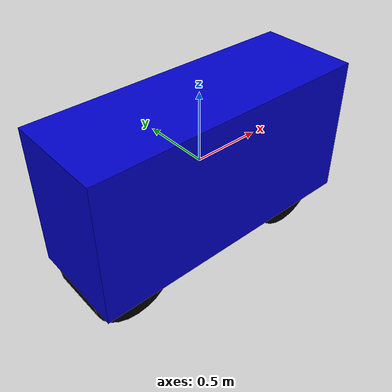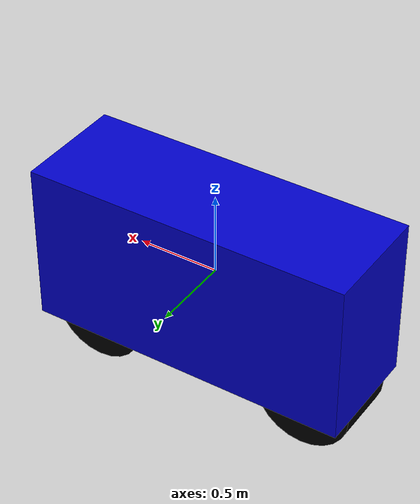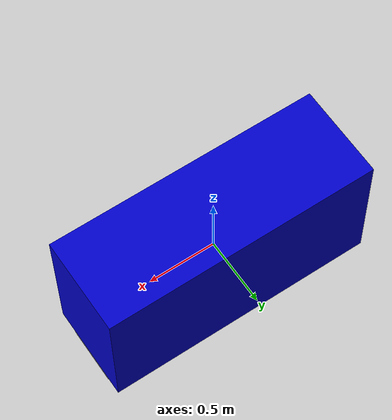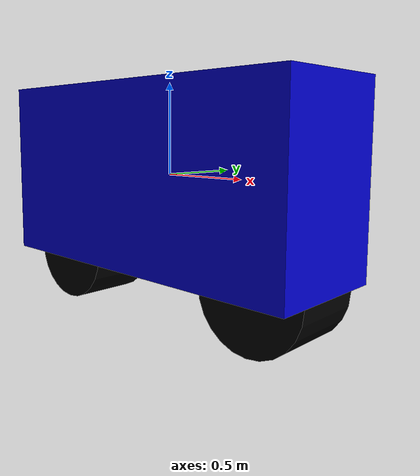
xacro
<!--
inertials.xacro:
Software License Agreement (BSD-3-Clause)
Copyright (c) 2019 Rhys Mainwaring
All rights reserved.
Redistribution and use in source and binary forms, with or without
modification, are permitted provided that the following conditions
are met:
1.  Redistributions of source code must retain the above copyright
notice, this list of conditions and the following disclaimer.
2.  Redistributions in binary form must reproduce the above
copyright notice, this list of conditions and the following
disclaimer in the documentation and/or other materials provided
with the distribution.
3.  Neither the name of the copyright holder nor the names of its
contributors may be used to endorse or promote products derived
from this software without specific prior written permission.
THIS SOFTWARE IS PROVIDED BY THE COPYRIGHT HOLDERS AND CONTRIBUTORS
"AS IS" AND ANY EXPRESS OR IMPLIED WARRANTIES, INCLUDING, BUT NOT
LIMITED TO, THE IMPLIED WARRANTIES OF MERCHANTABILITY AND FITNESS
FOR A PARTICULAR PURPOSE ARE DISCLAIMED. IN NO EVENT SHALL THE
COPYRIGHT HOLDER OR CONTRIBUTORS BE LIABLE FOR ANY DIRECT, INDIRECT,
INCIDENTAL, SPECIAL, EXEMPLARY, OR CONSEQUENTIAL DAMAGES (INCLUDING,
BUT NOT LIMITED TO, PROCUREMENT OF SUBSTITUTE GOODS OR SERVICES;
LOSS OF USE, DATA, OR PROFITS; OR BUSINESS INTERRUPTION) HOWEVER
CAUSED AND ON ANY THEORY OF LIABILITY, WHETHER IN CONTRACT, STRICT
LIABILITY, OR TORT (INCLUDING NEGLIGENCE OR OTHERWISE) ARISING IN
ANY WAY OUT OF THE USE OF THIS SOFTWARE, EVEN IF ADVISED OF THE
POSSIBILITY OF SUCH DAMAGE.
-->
<?xml version="1.0"?>
<robot  name="bicycle_bot" xmlns:xacro="http://wiki.ros.org/xacro">
    <!-- xacro includes -->
    <xacro:include filename="$(find acky_bot_description)/urdf/common/materials.xacro"/>
    <xacro:include filename="$(find acky_bot_description)/urdf/common/inertials.xacro"/>

    <xacro:property name="robot_namespace" value="/acky_bot"/>

    <!-- Gazebo plugins -->
    <gazebo>
        <!-- Load ros_control plugin -->
        <plugin name="gazebo_ros_control" filename="libgazebo_ros_control.so">
            <robotNamespace>${robot_namespace}</robotNamespace>
            <robotSimType>gazebo_ros_control/DefaultRobotHWSim</robotSimType>
            <legacyModeNS>false</legacyModeNS>
        </plugin>

        <!-- Load gazebo_ros plugin. Publish passive (non-actuated) joints from Gazebo -->
        <plugin name="gazebo_ros_joint_state_publisher" filename="libgazebo_ros_joint_state_publisher.so">
            <robotNamespace>${robot_namespace}</robotNamespace>
            <jointName>
                front_wheel_joint
            </jointName>
            <updateRate>50</updateRate>
            <alwaysOn>true</alwaysOn>
        </plugin>

    </gazebo>

    <!-- Degree-to-radian conversions -->
    <xacro:property name="degrees_45" value="0.785398163"/>
    <xacro:property name="degrees_90" value="1.57079633"/>
    <xacro:property name="degrees_180" value="3.14159265"/>

    <!-- Basic Geometry of Body -->
    <xacro:property name="body_length" value="2.0" />
    <xacro:property name="body_width" value="0.7" />
    <xacro:property name="body_height" value="1.0" />
    <xacro:property name="body_mass" value="10"/>

    <!-- Front Steer (Motor) Properties -->
    <xacro:property name="front_steer_width" value="0.4" />
    <xacro:property name="front_steer_diameter" value="0.3" />
    <xacro:property name="front_steer_mass" value="2"/>

    <!-- Front Wheel Properties -->
    <xacro:property name="front_wheel_width" value="0.4" />
    <xacro:property name="front_wheel_diameter" value="0.6" />
    <xacro:property name="front_wheel_mass" value="5"/>

    <!-- Rear Wheel Properties -->
    <xacro:property name="rear_wheel_width" value="0.4" />
    <xacro:property name="rear_wheel_diameter" value="0.6" />
    <xacro:property name="rear_wheel_mass" value="5"/>

    <!-- Base Link -->
    <link name="base_link">
        <visual>
            <geometry>
                <box size="${body_length} ${body_width} ${body_height}"/>
            </geometry>
            <material name="blue" />
        </visual>
        <collision>
            <geometry>
                <box size="${body_length} ${body_width} ${body_height}"/>
            </geometry>
        </collision>
        <xacro:solid_cuboid_inertial
            rpy="0 0 0" xyz="0 0 0"
            mass="${body_mass}"
            x="${body_length}" y="${body_width}" z="${body_height}" />
    </link>

    <gazebo reference="base_link">
        <material>Gazebo/Blue</material>
    </gazebo>

    <link name="front_steer">
        <visual>
            <origin xyz="0 0 0" rpy="0 0 0"/>
            <geometry>
                <cylinder radius="${front_steer_diameter/2}" length="${front_steer_width}"/>
            </geometry>
            <material name="green" />
        </visual>
        <collision>
            <origin xyz="0 0 0" rpy="0 0 0"/>
            <geometry>
                <cylinder radius="${front_steer_diameter/2}" length="${front_steer_width}"/>
            </geometry>
        </collision>
        <xacro:solid_cylinder_inertial
            rpy="${degrees_90} 0 0" xyz="0 0 0"
            mass="${front_steer_mass}"
            radius="${front_steer_diameter/2}" length="${front_steer_width}" />
    </link>

    <gazebo reference="front_steer">
        <material>Gazebo/Green</material>
    </gazebo>

    <joint name="front_steer_joint" type="revolute">
        <parent link="base_link"/>
        <child link="front_steer"/>
        <axis xyz="0 0 1"/>
        <origin xyz="0.7 0 0" rpy="0 0 0"/>
        <limit lower="-0.50" upper="0.50" effort="1000" velocity="3" />
    </joint>

    <transmission name="front_steer_joint_trans">
        <type>transmission_interface/SimpleTransmission</type>
        <joint name="front_steer_joint">
            <hardwareInterface>hardware_interface/PositionJointInterface</hardwareInterface>
        </joint>
        <actuator name="front_steer_joint_motor">
            <hardwareInterface>hardware_interface/PositionJointInterface</hardwareInterface>
            <mechanicalReduction>1</mechanicalReduction>
        </actuator>
    </transmission>

    <link name="front_wheel">
        <visual>
            <origin xyz="0 0 0" rpy="${degrees_90} 0 0"/>
            <geometry>
                <cylinder radius="${front_wheel_diameter/2}" length="${front_wheel_width}"/>
            </geometry>
            <material name="black" />
        </visual>
        <collision>
            <origin xyz="0 0 0" rpy="${degrees_90} 0 0"/>
            <geometry>
                <cylinder radius="${front_wheel_diameter/2}" length="${front_wheel_width}"/>
            </geometry>
        </collision>
        <xacro:solid_cylinder_inertial
            rpy="${degrees_90} 0 0" xyz="0 0 0"
            mass="${front_wheel_mass}"
            radius="${front_wheel_diameter/2}" length="${front_wheel_width}" />
    </link>

    <gazebo reference="front_wheel">
        <material>Gazebo/Black</material>
    </gazebo>

    <joint name="front_wheel_joint" type="continuous">
        <parent link="front_steer"/>
        <child link="front_wheel"/>
        <axis xyz="0 1 0"/>
        <origin xyz="0 0 ${-body_height/2}" rpy="0 0 0"/>
    </joint>

    <link name="rear_wheel">
        <visual>
            <origin xyz="0 0 0" rpy="${degrees_90} 0 0"/>
            <geometry>
                <cylinder radius="${rear_wheel_diameter/2}" length="${rear_wheel_width}"/>
            </geometry>
            <material name="black" />
        </visual>
        <collision>
            <origin xyz="0 0 0" rpy="${degrees_90} 0 0"/>
            <geometry>
                <cylinder radius="${rear_wheel_diameter/2}" length="${rear_wheel_width}"/>
            </geometry>
        </collision>
        <xacro:solid_cylinder_inertial
            rpy="${degrees_90} 0 0" xyz="0 0 0"
            mass="${rear_wheel_mass}"
            radius="${rear_wheel_diameter/2}" length="${rear_wheel_width}" />
    </link>

    <gazebo reference="rear_wheel">
        <material>Gazebo/Black</material>
    </gazebo>

    <joint name="rear_wheel_joint" type="continuous">
        <parent link="base_link"/>
        <child link="rear_wheel"/>
        <axis xyz="0 1 0"/>
        <origin xyz="-0.70 0 ${-body_height/2}" rpy="0 0 0"/>
    </joint>

    <transmission name="rear_wheel_joint_trans">
        <type>transmission_interface/SimpleTransmission</type>
        <joint name="rear_wheel_joint">
            <hardwareInterface>hardware_interface/VelocityJointInterface</hardwareInterface>
        </joint>
        <actuator name="rear_wheel_joint_motor">
            <hardwareInterface>hardware_interface/VelocityJointInterface</hardwareInterface>
            <mechanicalReduction>1</mechanicalReduction>
        </actuator>
    </transmission>

</robot>

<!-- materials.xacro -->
<!--  xacro macros for robot materials.
 -->
<robot name="materials" xmlns:xacro="http://wiki.ros.org/xacro">
   <material name="red">
        <color rgba="0.8 0 0 1"/>
    </material>

    <material name="green">
        <color rgba="0 0.8 0 1"/>
    </material>

    <material name="blue">
        <color rgba="0 0 0.8 1"/>
    </material>

    <material name="yellow">
        <color rgba="0.8 0.8 0 1"/>
    </material>

    <material name="orange">
        <color rgba="0.8 0.25 0 1"/>
    </material>

    <material name="black">
        <color rgba="0 0 0 1"/>
    </material>

    <material name="dark_gray">
        <color rgba="0.5 0.5 0.5 1"/>
    </material>

    <material name="gray">
        <color rgba="0.753 0.753 0.753 1"/>
    </material>

    <material name="silver">
        <color rgba="0.88 0.88 0.88 1"/>
    </material>

    <material name="white">
        <color rgba="1 1 1 1"/>
    </material>
</robot>

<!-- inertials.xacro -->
<!--  xacro macros for inertials.

    Define xacro macros for math constants and inertials:

    - solid cuboid
    - solid cylinder
    - null (a placeholder inertial for logical link elements)
 -->
<robot name="inertials" xmlns:xacro="http://www.ros.org/wiki/xacro">

    <!-- Math constants -->
    <xacro:property name="math_pi"        value="3.141592653589793" />
    <xacro:property name="math_pi_over_2" value="1.5707963267948966" />
    <xacro:property name="math_pi_over_4" value="0.785398163397448" />

    <!-- Inertial for solid cuboid with dimensions x y z  -->
    <xacro:macro name="solid_cuboid_inertial" params="rpy xyz mass x y z">
        <inertial>
            <origin rpy="${rpy}" xyz="${xyz}"/>
            <mass value="${mass}" />
            <inertia
                ixx="${mass * (y * y + z * z) / 12.0}" ixy="0.0" ixz="0.0"
                iyy="${mass * (x * x + z * z) / 12.0}" iyz="0.0"
                izz="${mass * (x * x + y * y) / 12.0}" />
        </inertial>
    </xacro:macro>

    <!-- Inertial for solid cylinder with radius and length aligned to z-axis  -->
    <xacro:macro name="solid_cylinder_inertial" params="rpy xyz mass radius length">
        <inertial>
            <origin rpy="${rpy}" xyz="${xyz}"/>
            <mass value="${mass}" />
            <inertia
                ixx="${mass * (3.0 * radius * radius + length * length) / 12.0}" ixy="0.0" ixz="0.0"
                iyy="${mass * (3.0 * radius * radius + length * length) / 12.0}" iyz="0.0"
                izz="${mass * (radius * radius) / 2.0}" />
        </inertial>
    </xacro:macro>

    <!-- A null inertial - used in placeholder links to esure the model will work in Gazebo -->
    <xacro:macro name="null_inertial">
        <inertial>
            <mass value="0.001"/>
            <inertia ixx="0.001" ixy="0" ixz="0" iyy="0.001" iyz="0" izz="0.001"/>
        </inertial>
    </xacro:macro>
</robot>
